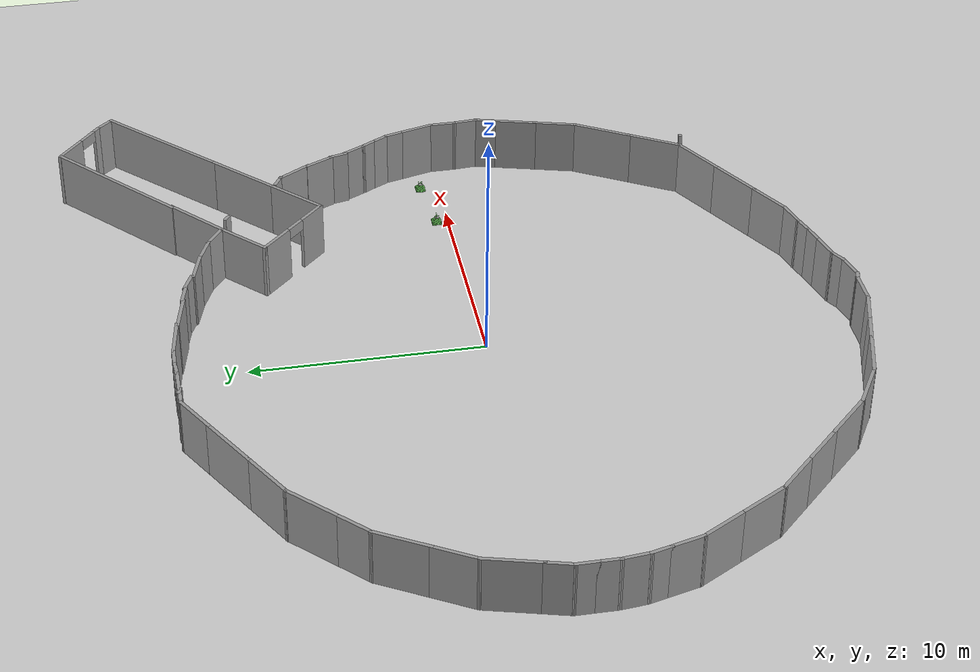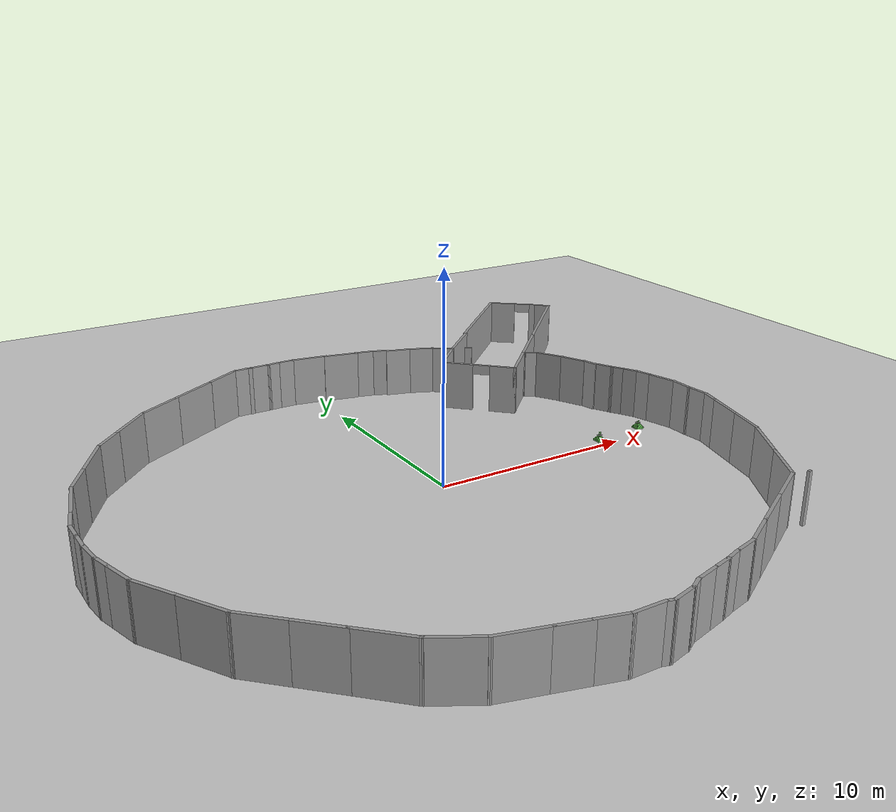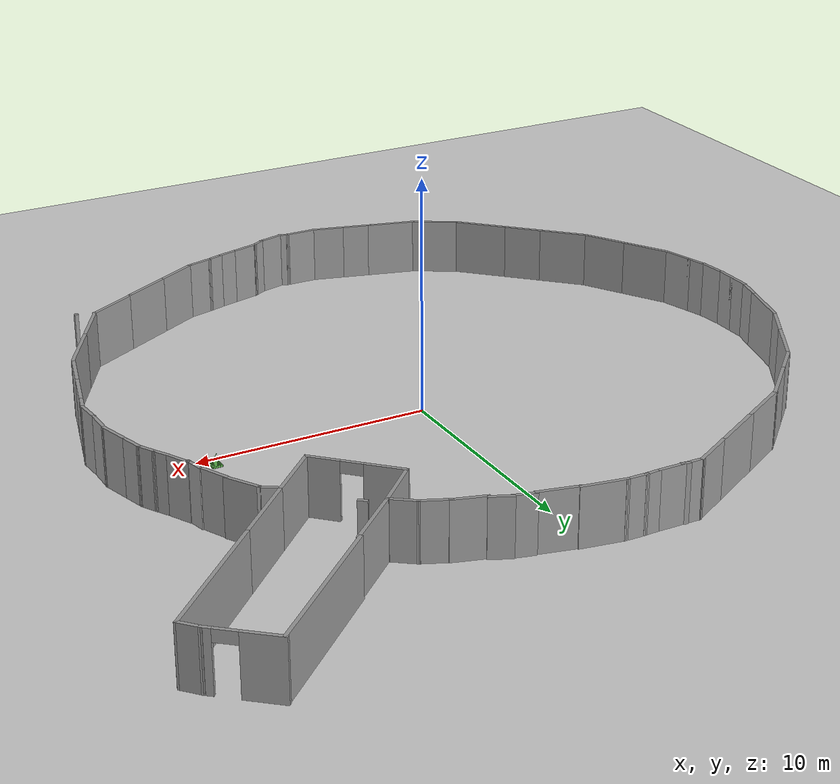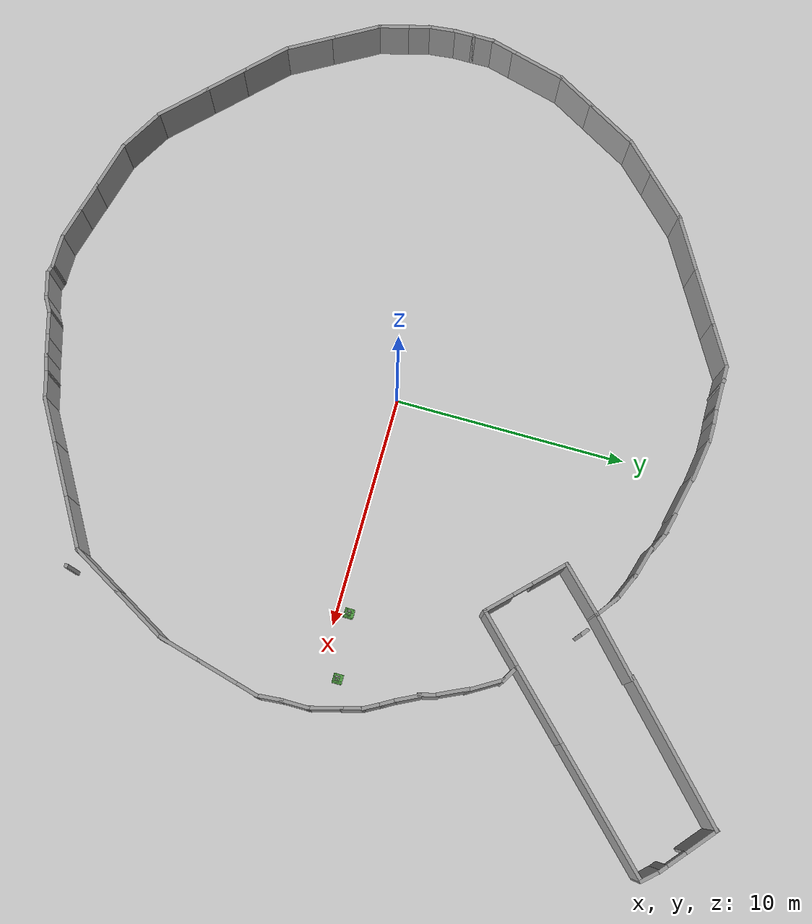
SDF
<sdf version="1.6">
 <world name="default">
  <model name="ground_plane">
   <static>1</static>
   <link name="link">
    <collision name="collision">
     <geometry><plane><normal>0 0 1</normal><size>100 100</size></plane></geometry>
     <surface><friction><ode><mu>100</mu><mu2>50</mu2></ode></friction></surface>
    </collision>
    <visual name="visual">
     <cast_shadows>0</cast_shadows>
     <geometry><plane><normal>0 0 1</normal><size>100 100</size></plane></geometry>
     <material>
      <script><uri>file://media/materials/scripts/gazebo.material</uri><name>Gazebo/Grey</name></script>
     </material>
    </visual>
   </link>
  </model>
  <model name="CircularFence">
   <pose>0.1565 0.6213 -0.024158 0 -0 0</pose>
   <link name="Wall_108">
    <collision name="Wall_108_Collision">
     <geometry><box><size>0.16 0.15 2.5</size></box></geometry>
     <pose>0 0 1.25 0 -0 0</pose>
    </collision>
    <visual name="Wall_108_Visual">
     <pose>0 0 1.25 0 -0 0</pose>
     <geometry><box><size>0.16 0.15 2.5</size></box></geometry>
     <material>
      <script><uri>file://media/materials/scripts/gazebo.material</uri><name>Gazebo/Grey</name></script>
      <ambient>0 0 0 0</ambient>
     </material>
    </visual>
    <pose>10.6487 -11.5681 0 0 -0 0</pose>
   </link>
   <link name="Wall_118">
    <collision name="Wall_118_Collision">
     <geometry><box><size>1.94177 0.15 2.5</size></box></geometry>
     <pose>0 0 1.25 0 -0 0</pose>
    </collision>
    <visual name="Wall_118_Visual">
     <pose>0 0 1.25 0 -0 0</pose>
     <geometry><box><size>1.94177 0.15 2.5</size></box></geometry>
     <material>
      <script><uri>file://media/materials/scripts/gazebo.material</uri><name>Gazebo/Grey</name></script>
      <ambient>1 1 1 1</ambient>
     </material>
    </visual>
    <pose>-0.537149 12.2558 0 0 -0 2.98255</pose>
   </link>
   <link name="Wall_120">
    <collision name="Wall_120_Collision">
     <geometry><box><size>1.83123 0.15 2.5</size></box></geometry>
     <pose>0 0 1.25 0 -0 0</pose>
    </collision>
    <visual name="Wall_120_Visual">
     <pose>0 0 1.25 0 -0 0</pose>
     <geometry><box><size>1.83123 0.15 2.5</size></box></geometry>
     <material>
      <script><uri>file://media/materials/scripts/gazebo.material</uri><name>Gazebo/Grey</name></script>
      <ambient>1 1 1 1</ambient>
     </material>
    </visual>
    <pose>1.13156 11.8951 0 0 -0 2.92292</pose>
   </link>
   <link name="Wall_123">
    <collision name="Wall_123_Collision">
     <geometry><box><size>1.25 0.15 2.5</size></box></geometry>
     <pose>0 0 1.25 0 -0 0</pose>
    </collision>
    <visual name="Wall_123_Visual">
     <pose>0 0 1.25 0 -0 0</pose>
     <geometry><box><size>1.25 0.15 2.5</size></box></geometry>
     <material>
      <script><uri>file://media/materials/scripts/gazebo.material</uri><name>Gazebo/Grey</name></script>
      <ambient>1 1 1 1</ambient>
     </material>
    </visual>
    <pose>13.4677 -1.09217 0 0 -0 1.5708</pose>
   </link>
   <link name="Wall_126">
    <collision name="Wall_126_Collision">
     <geometry><box><size>1.5 0.15 2.5</size></box></geometry>
     <pose>0 0 1.25 0 -0 0</pose>
    </collision>
    <visual name="Wall_126_Visual">
     <pose>0 0 1.25 0 -0 0</pose>
     <geometry><box><size>1.5 0.15 2.5</size></box></geometry>
     <material>
      <script><uri>file://media/materials/scripts/gazebo.material</uri><name>Gazebo/Grey</name></script>
      <ambient>1 1 1 1</ambient>
     </material>
    </visual>
    <pose>13.293 0.109828 0 0 -0 1.8326</pose>
   </link>
   <link name="Wall_127">
    <collision name="Wall_127_Collision">
     <geometry><box><size>1 0.15 2.5</size></box></geometry>
     <pose>0 0 1.25 0 -0 0</pose>
    </collision>
    <visual name="Wall_127_Visual">
     <pose>0 0 1.25 0 -0 0</pose>
     <geometry><box><size>1 0.15 2.5</size></box></geometry>
     <material>
      <script><uri>file://media/materials/scripts/gazebo.material</uri><name>Gazebo/Grey</name></script>
      <ambient>1 1 1 1</ambient>
     </material>
    </visual>
    <pose>13.0083 1.17235 0 0 -0 1.8326</pose>
   </link>
   <link name="Wall_128">
    <collision name="Wall_128_Collision">
     <geometry><box><size>0.888528 0.15 2.5</size></box></geometry>
     <pose>0 0 1.25 0 -0 0</pose>
    </collision>
    <visual name="Wall_128_Visual">
     <pose>0 0 1.25 0 -0 0</pose>
     <geometry><box><size>0.888528 0.15 2.5</size></box></geometry>
     <material>
      <script><uri>file://media/materials/scripts/gazebo.material</uri><name>Gazebo/Grey</name></script>
      <ambient>1 1 1 1</ambient>
     </material>
    </visual>
    <pose>12.7215 1.90706 0 0 -0 2.07005</pose>
   </link>
   <link name="Wall_129">
    <collision name="Wall_129_Collision">
     <geometry><box><size>0.75 0.15 2.5</size></box></geometry>
     <pose>0 0 1.25 0 -0 0</pose>
    </collision>
    <visual name="Wall_129_Visual">
     <pose>0 0 1.25 0 -0 0</pose>
     <geometry><box><size>0.75 0.15 2.5</size></box></geometry>
     <material>
      <script><uri>file://media/materials/scripts/gazebo.material</uri><name>Gazebo/Grey</name></script>
      <ambient>1 1 1 1</ambient>
     </material>
    </visual>
    <pose>12.3947 2.49105 0 0 -0 2.0944</pose>
   </link>
   <link name="Wall_130">
    <collision name="Wall_130_Collision">
     <geometry><box><size>1.12578 0.15 2.5</size></box></geometry>
     <pose>0 0 1.25 0 -0 0</pose>
    </collision>
    <visual name="Wall_130_Visual">
     <pose>0 0 1.25 0 -0 0</pose>
     <geometry><box><size>1.12578 0.15 2.5</size></box></geometry>
     <material>
      <script><uri>file://media/materials/scripts/gazebo.material</uri><name>Gazebo/Grey</name></script>
      <ambient>1 1 1 1</ambient>
     </material>
    </visual>
    <pose>12.026 3.18702 0 0 -0 2.03549</pose>
   </link>
   <link name="Wall_131">
    <collision name="Wall_131_Collision">
     <geometry><box><size>0.879 0.15 2.5</size></box></geometry>
     <pose>0 0 1.25 0 -0 0</pose>
    </collision>
    <visual name="Wall_131_Visual">
     <pose>0 0 1.25 0 -0 0</pose>
     <geometry><box><size>0.879 0.15 2.5</size></box></geometry>
     <material>
      <script><uri>file://media/materials/scripts/gazebo.material</uri><name>Gazebo/Grey</name></script>
      <ambient>1 1 1 1</ambient>
     </material>
    </visual>
    <pose>11.6892 3.94192 0 0 -0 1.79684</pose>
   </link>
   <link name="Wall_132">
    <collision name="Wall_132_Collision">
     <geometry><box><size>1.36585 0.15 2.5</size></box></geometry>
     <pose>0 0 1.25 0 -0 0</pose>
    </collision>
    <visual name="Wall_132_Visual">
     <pose>0 0 1.25 0 -0 0</pose>
     <geometry><box><size>1.36585 0.15 2.5</size></box></geometry>
     <material>
      <script><uri>file://media/materials/scripts/gazebo.material</uri><name>Gazebo/Grey</name></script>
      <ambient>1 1 1 1</ambient>
     </material>
    </visual>
    <pose>11.3126 4.84739 0 0 -0 2.00995</pose>
   </link>
   <link name="Wall_133">
    <collision name="Wall_133_Collision">
     <geometry><box><size>1.64734 0.15 2.5</size></box></geometry>
     <pose>0 0 1.25 0 -0 0</pose>
    </collision>
    <visual name="Wall_133_Visual">
     <pose>0 0 1.25 0 -0 0</pose>
     <geometry><box><size>1.64734 0.15 2.5</size></box></geometry>
     <material>
      <script><uri>file://media/materials/scripts/gazebo.material</uri><name>Gazebo/Grey</name></script>
      <ambient>1 1 1 1</ambient>
     </material>
    </visual>
    <pose>10.7045 6.03905 0 0 -0 2.11267</pose>
   </link>
   <link name="Wall_134">
    <collision name="Wall_134_Collision">
     <geometry><box><size>0.75 0.15 2.5</size></box></geometry>
     <pose>0 0 1.25 0 -0 0</pose>
    </collision>
    <visual name="Wall_134_Visual">
     <pose>0 0 1.25 0 -0 0</pose>
     <geometry><box><size>0.75 0.15 2.5</size></box></geometry>
     <material>
      <script><uri>file://media/materials/scripts/gazebo.material</uri><name>Gazebo/Grey</name></script>
      <ambient>1 1 1 1</ambient>
     </material>
    </visual>
    <pose>10.095 6.83046 0 0 -0 2.61799</pose>
   </link>
   <link name="Wall_138">
    <collision name="Wall_138_Collision">
     <geometry><box><size>1.24911 0.15 2.5</size></box></geometry>
     <pose>0 0 1.25 0 -0 0</pose>
    </collision>
    <visual name="Wall_138_Visual">
     <pose>0 0 1.25 0 -0 0</pose>
     <geometry><box><size>1.24911 0.15 2.5</size></box></geometry>
     <material>
      <script><uri>file://media/materials/scripts/gazebo.material</uri><name>Gazebo/Grey</name></script>
      <ambient>1 1 1 1</ambient>
     </material>
    </visual>
    <pose>6.34771 9.97388 0 0 -0 2.4965</pose>
   </link>
   <link name="Wall_139">
    <collision name="Wall_139_Collision">
     <geometry><box><size>1.31498 0.15 2.5</size></box></geometry>
     <pose>0 0 1.25 0 -0 0</pose>
    </collision>
    <visual name="Wall_139_Visual">
     <pose>0 0 1.25 0 -0 0</pose>
     <geometry><box><size>1.31498 0.15 2.5</size></box></geometry>
     <material>
      <script><uri>file://media/materials/scripts/gazebo.material</uri><name>Gazebo/Grey</name></script>
      <ambient>1 1 1 1</ambient>
     </material>
    </visual>
    <pose>5.37423 10.5362 0 0 -0 2.7322</pose>
   </link>
   <link name="Wall_140">
    <collision name="Wall_140_Collision">
     <geometry><box><size>1.49782 0.15 2.5</size></box></geometry>
     <pose>0 0 1.25 0 -0 0</pose>
    </collision>
    <visual name="Wall_140_Visual">
     <pose>0 0 1.25 0 -0 0</pose>
     <geometry><box><size>1.49782 0.15 2.5</size></box></geometry>
     <material>
      <script><uri>file://media/materials/scripts/gazebo.material</uri><name>Gazebo/Grey</name></script>
      <ambient>1 1 1 1</ambient>
     </material>
    </visual>
    <pose>4.22956 10.9573 0 0 -0 2.85692</pose>
   </link>
   <link name="Wall_141">
    <collision name="Wall_141_Collision">
     <geometry><box><size>1.00545 0.15 2.5</size></box></geometry>
     <pose>0 0 1.25 0 -0 0</pose>
    </collision>
    <visual name="Wall_141_Visual">
     <pose>0 0 1.25 0 -0 0</pose>
     <geometry><box><size>1.00545 0.15 2.5</size></box></geometry>
     <material>
      <script><uri>file://media/materials/scripts/gazebo.material</uri><name>Gazebo/Grey</name></script>
      <ambient>1 1 1 1</ambient>
     </material>
    </visual>
    <pose>3.19415 11.3982 0 0 -0 2.71064</pose>
   </link>
   <link name="Wall_142">
    <collision name="Wall_142_Collision">
     <geometry><box><size>0.993176 0.15 2.5</size></box></geometry>
     <pose>0 0 1.25 0 -0 0</pose>
    </collision>
    <visual name="Wall_142_Visual">
     <pose>0 0 1.25 0 -0 0</pose>
     <geometry><box><size>0.993176 0.15 2.5</size></box></geometry>
     <material>
      <script><uri>file://media/materials/scripts/gazebo.material</uri><name>Gazebo/Grey</name></script>
      <ambient>1 1 1 1</ambient>
     </material>
    </visual>
    <pose>2.39708 11.6448 0 0 -0 2.89134</pose>
   </link>
   <link name="Wall_144">
    <collision name="Wall_144_Collision">
     <geometry><box><size>0.5 0.15 2.5</size></box></geometry>
     <pose>0 0 1.25 0 -0 0</pose>
    </collision>
    <visual name="Wall_144_Visual">
     <pose>0 0 1.25 0 -0 0</pose>
     <geometry><box><size>0.5 0.15 2.5</size></box></geometry>
     <material>
      <script><uri>file://media/materials/scripts/gazebo.material</uri><name>Gazebo/Grey</name></script>
      <ambient>1 1 1 1</ambient>
     </material>
    </visual>
    <pose>-1.16759 -16.1719 0 0 0 -0.261799</pose>
   </link>
   <link name="Wall_145">
    <collision name="Wall_145_Collision">
     <geometry><box><size>1.25 0.15 2.5</size></box></geometry>
     <pose>0 0 1.25 0 -0 0</pose>
    </collision>
    <visual name="Wall_145_Visual">
     <pose>0 0 1.25 0 -0 0</pose>
     <geometry><box><size>1.25 0.15 2.5</size></box></geometry>
     <material>
      <script><uri>file://media/materials/scripts/gazebo.material</uri><name>Gazebo/Grey</name></script>
      <ambient>1 1 1 1</ambient>
     </material>
    </visual>
    <pose>-0.467294 -16.0748 0 0 -0 0.261799</pose>
   </link>
   <link name="Wall_146">
    <collision name="Wall_146_Collision">
     <geometry><box><size>0.75 0.15 2.5</size></box></geometry>
     <pose>0 0 1.25 0 -0 0</pose>
    </collision>
    <visual name="Wall_146_Visual">
     <pose>0 0 1.25 0 -0 0</pose>
     <geometry><box><size>0.75 0.15 2.5</size></box></geometry>
     <material>
      <script><uri>file://media/materials/scripts/gazebo.material</uri><name>Gazebo/Grey</name></script>
      <ambient>1 1 1 1</ambient>
     </material>
    </visual>
    <pose>0.323772 -15.7825 0 0 -0 0.523599</pose>
   </link>
   <link name="Wall_147">
    <collision name="Wall_147_Collision">
     <geometry><box><size>1.25 0.15 2.5</size></box></geometry>
     <pose>0 0 1.25 0 -0 0</pose>
    </collision>
    <visual name="Wall_147_Visual">
     <pose>0 0 1.25 0 -0 0</pose>
     <geometry><box><size>1.25 0.15 2.5</size></box></geometry>
     <material>
      <script><uri>file://media/materials/scripts/gazebo.material</uri><name>Gazebo/Grey</name></script>
      <ambient>1 1 1 1</ambient>
     </material>
    </visual>
    <pose>1.11484 -15.4901 0 0 -0 0.261799</pose>
   </link>
   <link name="Wall_148">
    <collision name="Wall_148_Collision">
     <geometry><box><size>1 0.15 2.5</size></box></geometry>
     <pose>0 0 1.25 0 -0 0</pose>
    </collision>
    <visual name="Wall_148_Visual">
     <pose>0 0 1.25 0 -0 0</pose>
     <geometry><box><size>1 0.15 2.5</size></box></geometry>
     <material>
      <script><uri>file://media/materials/scripts/gazebo.material</uri><name>Gazebo/Grey</name></script>
      <ambient>1 1 1 1</ambient>
     </material>
    </visual>
    <pose>2.05662 -15.2378 0 0 -0 0.261799</pose>
   </link>
   <link name="Wall_166">
    <collision name="Wall_166_Collision">
     <geometry><box><size>1.16803 0.15 2.5</size></box></geometry>
     <pose>0 0 1.25 0 -0 0</pose>
    </collision>
    <visual name="Wall_166_Visual">
     <pose>0 0 1.25 0 -0 0</pose>
     <geometry><box><size>1.16803 0.15 2.5</size></box></geometry>
     <material>
      <script><uri>file://media/materials/scripts/gazebo.material</uri><name>Gazebo/Grey</name></script>
      <ambient>1 1 1 1</ambient>
     </material>
    </visual>
    <pose>13.5088 -2.14952 0 0 -0 1.6517</pose>
   </link>
   <link name="Wall_168">
    <collision name="Wall_168_Collision">
     <geometry><box><size>0.970327 0.15 2.5</size></box></geometry>
     <pose>0 0 1.25 0 -0 0</pose>
    </collision>
    <visual name="Wall_168_Visual">
     <pose>0 0 1.25 0 -0 0</pose>
     <geometry><box><size>0.970327 0.15 2.5</size></box></geometry>
     <material>
      <script><uri>file://media/materials/scripts/gazebo.material</uri><name>Gazebo/Grey</name></script>
      <ambient>1 1 1 1</ambient>
     </material>
    </visual>
    <pose>-1.83187 12.4017 0 0 0 -0.009748</pose>
   </link>
   <link name="Wall_170">
    <collision name="Wall_170_Collision">
     <geometry><box><size>1 0.15 2.5</size></box></geometry>
     <pose>0 0 1.25 0 -0 0</pose>
    </collision>
    <visual name="Wall_170_Visual">
     <pose>0 0 1.25 0 -0 0</pose>
     <geometry><box><size>1 0.15 2.5</size></box></geometry>
     <material>
      <script><uri>file://media/materials/scripts/gazebo.material</uri><name>Gazebo/Grey</name></script>
      <ambient>1 1 1 1</ambient>
     </material>
    </visual>
    <pose>-16.3823 -1.21717 0 0 -0 1.5708</pose>
   </link>
   <link name="Wall_172">
    <collision name="Wall_172_Collision">
     <geometry><box><size>1 0.15 2.5</size></box></geometry>
     <pose>0 0 1.25 0 -0 0</pose>
    </collision>
    <visual name="Wall_172_Visual">
     <pose>0 0 1.25 0 -0 0</pose>
     <geometry><box><size>1 0.15 2.5</size></box></geometry>
     <material>
      <script><uri>file://media/materials/scripts/gazebo.material</uri><name>Gazebo/Grey</name></script>
      <ambient>1 1 1 1</ambient>
     </material>
    </visual>
    <pose>-16.3823 -2.06717 0 0 0 -1.5708</pose>
   </link>
   <link name="Wall_174">
    <collision name="Wall_174_Collision">
     <geometry><box><size>1.5 0.15 2.5</size></box></geometry>
     <pose>0 0 1.25 0 -0 0</pose>
    </collision>
    <visual name="Wall_174_Visual">
     <pose>0 0 1.25 0 -0 0</pose>
     <geometry><box><size>1.5 0.15 2.5</size></box></geometry>
     <material>
      <script><uri>file://media/materials/scripts/gazebo.material</uri><name>Gazebo/Grey</name></script>
      <ambient>1 1 1 1</ambient>
     </material>
    </visual>
    <pose>-2.01163 -16.1266 0 0 -0 3.14159</pose>
   </link>
   <link name="Wall_175">
    <collision name="Wall_175_Collision">
     <geometry><box><size>1.5 0.15 2.5</size></box></geometry>
     <pose>0 0 1.25 0 -0 0</pose>
    </collision>
    <visual name="Wall_175_Visual">
     <pose>0 0 1.25 0 -0 0</pose>
     <geometry><box><size>1.5 0.15 2.5</size></box></geometry>
     <material>
      <script><uri>file://media/materials/scripts/gazebo.material</uri><name>Gazebo/Grey</name></script>
      <ambient>1 1 1 1</ambient>
     </material>
    </visual>
    <pose>-3.33863 -15.9519 0 0 -0 2.87979</pose>
   </link>
   <link name="Wall_176">
    <collision name="Wall_176_Collision">
     <geometry><box><size>1.5 0.15 2.5</size></box></geometry>
     <pose>0 0 1.25 0 -0 0</pose>
    </collision>
    <visual name="Wall_176_Visual">
     <pose>0 0 1.25 0 -0 0</pose>
     <geometry><box><size>1.5 0.15 2.5</size></box></geometry>
     <material>
      <script><uri>file://media/materials/scripts/gazebo.material</uri><name>Gazebo/Grey</name></script>
      <ambient>1 1 1 1</ambient>
     </material>
    </visual>
    <pose>-4.64263 -15.6025 0 0 -0 2.87979</pose>
   </link>
   <link name="Wall_177">
    <collision name="Wall_177_Collision">
     <geometry><box><size>2.25 0.15 2.5</size></box></geometry>
     <pose>0 0 1.25 0 -0 0</pose>
    </collision>
    <visual name="Wall_177_Visual">
     <pose>0 0 1.25 0 -0 0</pose>
     <geometry><box><size>2.25 0.15 2.5</size></box></geometry>
     <material>
      <script><uri>file://media/materials/scripts/gazebo.material</uri><name>Gazebo/Grey</name></script>
      <ambient>1 1 1 1</ambient>
     </material>
    </visual>
    <pose>-6.30885 -15.156 0 0 -0 2.87979</pose>
   </link>
   <link name="Wall_178">
    <collision name="Wall_178_Collision">
     <geometry><box><size>2.25 0.15 2.5</size></box></geometry>
     <pose>0 0 1.25 0 -0 0</pose>
    </collision>
    <visual name="Wall_178_Visual">
     <pose>0 0 1.25 0 -0 0</pose>
     <geometry><box><size>2.25 0.15 2.5</size></box></geometry>
     <material>
      <script><uri>file://media/materials/scripts/gazebo.material</uri><name>Gazebo/Grey</name></script>
      <ambient>1 1 1 1</ambient>
     </material>
    </visual>
    <pose>-8.2324 -14.3592 0 0 -0 2.61799</pose>
   </link>
   <link name="Wall_179">
    <collision name="Wall_179_Collision">
     <geometry><box><size>2.5 0.15 2.5</size></box></geometry>
     <pose>0 0 1.25 0 -0 0</pose>
    </collision>
    <visual name="Wall_179_Visual">
     <pose>0 0 1.25 0 -0 0</pose>
     <geometry><box><size>2.5 0.15 2.5</size></box></geometry>
     <material>
      <script><uri>file://media/materials/scripts/gazebo.material</uri><name>Gazebo/Grey</name></script>
      <ambient>1 1 1 1</ambient>
     </material>
    </visual>
    <pose>-9.97258 -13.0034 0 0 -0 2.35619</pose>
   </link>
   <link name="Wall_180">
    <collision name="Wall_180_Collision">
     <geometry><box><size>2 0.15 2.5</size></box></geometry>
     <pose>0 0 1.25 0 -0 0</pose>
    </collision>
    <visual name="Wall_180_Visual">
     <pose>0 0 1.25 0 -0 0</pose>
     <geometry><box><size>2 0.15 2.5</size></box></geometry>
     <material>
      <script><uri>file://media/materials/scripts/gazebo.material</uri><name>Gazebo/Grey</name></script>
      <ambient>1 1 1 1</ambient>
     </material>
    </visual>
    <pose>-11.4575 -11.5185 0 0 -0 2.35619</pose>
   </link>
   <link name="Wall_181">
    <collision name="Wall_181_Collision">
     <geometry><box><size>2.25 0.15 2.5</size></box></geometry>
     <pose>0 0 1.25 0 -0 0</pose>
    </collision>
    <visual name="Wall_181_Visual">
     <pose>0 0 1.25 0 -0 0</pose>
     <geometry><box><size>2.25 0.15 2.5</size></box></geometry>
     <material>
      <script><uri>file://media/materials/scripts/gazebo.material</uri><name>Gazebo/Grey</name></script>
      <ambient>1 1 1 1</ambient>
     </material>
    </visual>
    <pose>-12.854 -10.1219 0 0 -0 2.35619</pose>
   </link>
   <link name="Wall_182">
    <collision name="Wall_182_Collision">
     <geometry><box><size>2.25 0.15 2.5</size></box></geometry>
     <pose>0 0 1.25 0 -0 0</pose>
    </collision>
    <visual name="Wall_182_Visual">
     <pose>0 0 1.25 0 -0 0</pose>
     <geometry><box><size>2.25 0.15 2.5</size></box></geometry>
     <material>
      <script><uri>file://media/materials/scripts/gazebo.material</uri><name>Gazebo/Grey</name></script>
      <ambient>1 1 1 1</ambient>
     </material>
    </visual>
    <pose>-14.1215 -8.47014 0 0 -0 2.0944</pose>
   </link>
   <link name="Wall_183">
    <collision name="Wall_183_Collision">
     <geometry><box><size>2.25 0.15 2.5</size></box></geometry>
     <pose>0 0 1.25 0 -0 0</pose>
    </collision>
    <visual name="Wall_183_Visual">
     <pose>0 0 1.25 0 -0 0</pose>
     <geometry><box><size>2.25 0.15 2.5</size></box></geometry>
     <material>
      <script><uri>file://media/materials/scripts/gazebo.material</uri><name>Gazebo/Grey</name></script>
      <ambient>1 1 1 1</ambient>
     </material>
    </visual>
    <pose>-15.1715 -6.65149 0 0 -0 2.0944</pose>
   </link>
   <link name="Wall_184">
    <collision name="Wall_184_Collision">
     <geometry><box><size>1.5 0.15 2.5</size></box></geometry>
     <pose>0 0 1.25 0 -0 0</pose>
    </collision>
    <visual name="Wall_184_Visual">
     <pose>0 0 1.25 0 -0 0</pose>
     <geometry><box><size>1.5 0.15 2.5</size></box></geometry>
     <material>
      <script><uri>file://media/materials/scripts/gazebo.material</uri><name>Gazebo/Grey</name></script>
      <ambient>1 1 1 1</ambient>
     </material>
    </visual>
    <pose>-15.8712 -5.09016 0 0 -0 1.8326</pose>
   </link>
   <link name="Wall_185">
    <collision name="Wall_185_Collision">
     <geometry><box><size>1 0.15 2.5</size></box></geometry>
     <pose>0 0 1.25 0 -0 0</pose>
    </collision>
    <visual name="Wall_185_Visual">
     <pose>0 0 1.25 0 -0 0</pose>
     <geometry><box><size>1 0.15 2.5</size></box></geometry>
     <material>
      <script><uri>file://media/materials/scripts/gazebo.material</uri><name>Gazebo/Grey</name></script>
      <ambient>1 1 1 1</ambient>
     </material>
    </visual>
    <pose>-16.1559 -4.02765 0 0 -0 1.8326</pose>
   </link>
   <link name="Wall_186">
    <collision name="Wall_186_Collision">
     <geometry><box><size>1.28097 0.15 2.5</size></box></geometry>
     <pose>0 0 1.25 0 -0 0</pose>
    </collision>
    <visual name="Wall_186_Visual">
     <pose>0 0 1.25 0 -0 0</pose>
     <geometry><box><size>1.28097 0.15 2.5</size></box></geometry>
     <material>
      <script><uri>file://media/materials/scripts/gazebo.material</uri><name>Gazebo/Grey</name></script>
      <ambient>1 1 1 1</ambient>
     </material>
    </visual>
    <pose>-16.3241 -3.05465 0 0 -0 1.67393</pose>
   </link>
   <link name="Wall_190">
    <collision name="Wall_190_Collision">
     <geometry><box><size>0.415491 0.15 2.5</size></box></geometry>
     <pose>0 0 1.25 0 -0 0</pose>
    </collision>
    <visual name="Wall_190_Visual">
     <pose>0 0 1.25 0 -0 0</pose>
     <geometry><box><size>0.415491 0.15 2.5</size></box></geometry>
     <material>
      <script><uri>file://media/materials/scripts/gazebo.material</uri><name>Gazebo/Grey</name></script>
      <ambient>0 0 0 0</ambient>
     </material>
    </visual>
    <pose>-3.96438 12.3692 0 0 0 -0.278323</pose>
   </link>
   <link name="Wall_200">
    <collision name="Wall_200_Collision">
     <geometry><box><size>1.25 0.15 2.5</size></box></geometry>
     <pose>0 0 1.25 0 -0 0</pose>
    </collision>
    <visual name="Wall_200_Visual">
     <pose>0 0 1.25 0 -0 0</pose>
     <geometry><box><size>1.25 0.15 2.5</size></box></geometry>
     <material>
      <script><uri>file://media/materials/scripts/gazebo.material</uri><name>Gazebo/Grey</name></script>
      <ambient>1 1 1 1</ambient>
     </material>
    </visual>
    <pose>-16.24 -0.260912 0 0 -0 1.309</pose>
   </link>
   <link name="Wall_201">
    <collision name="Wall_201_Collision">
     <geometry><box><size>2.5 0.15 2.5</size></box></geometry>
     <pose>0 0 1.25 0 -0 0</pose>
    </collision>
    <visual name="Wall_201_Visual">
     <pose>0 0 1.25 0 -0 0</pose>
     <geometry><box><size>2.5 0.15 2.5</size></box></geometry>
     <material>
      <script><uri>file://media/materials/scripts/gazebo.material</uri><name>Gazebo/Grey</name></script>
      <ambient>1 1 1 1</ambient>
     </material>
    </visual>
    <pose>-15.7935 1.40531 0 0 -0 1.309</pose>
   </link>
   <link name="Wall_202">
    <collision name="Wall_202_Collision">
     <geometry><box><size>2 0.15 2.5</size></box></geometry>
     <pose>0 0 1.25 0 -0 0</pose>
    </collision>
    <visual name="Wall_202_Visual">
     <pose>0 0 1.25 0 -0 0</pose>
     <geometry><box><size>2 0.15 2.5</size></box></geometry>
     <material>
      <script><uri>file://media/materials/scripts/gazebo.material</uri><name>Gazebo/Grey</name></script>
      <ambient>1 1 1 1</ambient>
     </material>
    </visual>
    <pose>-15.0269 3.34135 0 0 -0 1.0472</pose>
   </link>
   <link name="Wall_203">
    <collision name="Wall_203_Collision">
     <geometry><box><size>2.5 0.15 2.5</size></box></geometry>
     <pose>0 0 1.25 0 -0 0</pose>
    </collision>
    <visual name="Wall_203_Visual">
     <pose>0 0 1.25 0 -0 0</pose>
     <geometry><box><size>2.5 0.15 2.5</size></box></geometry>
     <material>
      <script><uri>file://media/materials/scripts/gazebo.material</uri><name>Gazebo/Grey</name></script>
      <ambient>1 1 1 1</ambient>
     </material>
    </visual>
    <pose>-13.9769 5.16 0 0 -0 1.0472</pose>
   </link>
   <link name="Wall_204">
    <collision name="Wall_204_Collision">
     <geometry><box><size>1.75 0.15 2.5</size></box></geometry>
     <pose>0 0 1.25 0 -0 0</pose>
    </collision>
    <visual name="Wall_204_Visual">
     <pose>0 0 1.25 0 -0 0</pose>
     <geometry><box><size>1.75 0.15 2.5</size></box></geometry>
     <material>
      <script><uri>file://media/materials/scripts/gazebo.material</uri><name>Gazebo/Grey</name></script>
      <ambient>1 1 1 1</ambient>
     </material>
    </visual>
    <pose>-12.8237 6.74327 0 0 -0 0.785398</pose>
   </link>
   <link name="Wall_205">
    <collision name="Wall_205_Collision">
     <geometry><box><size>2.5 0.15 2.5</size></box></geometry>
     <pose>0 0 1.25 0 -0 0</pose>
    </collision>
    <visual name="Wall_205_Visual">
     <pose>0 0 1.25 0 -0 0</pose>
     <geometry><box><size>2.5 0.15 2.5</size></box></geometry>
     <material>
      <script><uri>file://media/materials/scripts/gazebo.material</uri><name>Gazebo/Grey</name></script>
      <ambient>1 1 1 1</ambient>
     </material>
    </visual>
    <pose>-11.4272 8.1398 0 0 -0 0.785398</pose>
   </link>
   <link name="Wall_206">
    <collision name="Wall_206_Collision">
     <geometry><box><size>2.5 0.15 2.5</size></box></geometry>
     <pose>0 0 1.25 0 -0 0</pose>
    </collision>
    <visual name="Wall_206_Visual">
     <pose>0 0 1.25 0 -0 0</pose>
     <geometry><box><size>2.5 0.15 2.5</size></box></geometry>
     <material>
      <script><uri>file://media/materials/scripts/gazebo.material</uri><name>Gazebo/Grey</name></script>
      <ambient>1 1 1 1</ambient>
     </material>
    </visual>
    <pose>-9.57876 9.55815 0 0 -0 0.523599</pose>
   </link>
   <link name="Wall_207">
    <collision name="Wall_207_Collision">
     <geometry><box><size>2.75 0.15 2.5</size></box></geometry>
     <pose>0 0 1.25 0 -0 0</pose>
    </collision>
    <visual name="Wall_207_Visual">
     <pose>0 0 1.25 0 -0 0</pose>
     <geometry><box><size>2.75 0.15 2.5</size></box></geometry>
     <material>
      <script><uri>file://media/materials/scripts/gazebo.material</uri><name>Gazebo/Grey</name></script>
      <ambient>1 1 1 1</ambient>
     </material>
    </visual>
    <pose>-7.43534 10.7957 0 0 -0 0.523599</pose>
   </link>
   <link name="Wall_208">
    <collision name="Wall_208_Collision">
     <geometry><box><size>2 0.15 2.5</size></box></geometry>
     <pose>0 0 1.25 0 -0 0</pose>
    </collision>
    <visual name="Wall_208_Visual">
     <pose>0 0 1.25 0 -0 0</pose>
     <geometry><box><size>2 0.15 2.5</size></box></geometry>
     <material>
      <script><uri>file://media/materials/scripts/gazebo.material</uri><name>Gazebo/Grey</name></script>
      <ambient>1 1 1 1</ambient>
     </material>
    </visual>
    <pose>-5.50844 11.9081 0 0 -0 0.523599</pose>
   </link>
   <link name="Wall_209">
    <collision name="Wall_209_Collision">
     <geometry><box><size>2 0.15 2.5</size></box></geometry>
     <pose>0 0 1.25 0 -0 0</pose>
    </collision>
    <visual name="Wall_209_Visual">
     <pose>0 0 1.25 0 -0 0</pose>
     <geometry><box><size>2 0.15 2.5</size></box></geometry>
     <material>
      <script><uri>file://media/materials/scripts/gazebo.material</uri><name>Gazebo/Grey</name></script>
      <ambient>1 1 1 1</ambient>
     </material>
    </visual>
    <pose>-3.78236 12.3707 0 0 -0 0</pose>
   </link>
   <link name="Wall_210">
    <collision name="Wall_210_Collision">
     <geometry><box><size>0.766345 0.15 2.5</size></box></geometry>
     <pose>0 0 1.25 0 -0 0</pose>
    </collision>
    <visual name="Wall_210_Visual">
     <pose>0 0 1.25 0 -0 0</pose>
     <geometry><box><size>0.766345 0.15 2.5</size></box></geometry>
     <material>
      <script><uri>file://media/materials/scripts/gazebo.material</uri><name>Gazebo/Grey</name></script>
      <ambient>1 1 1 1</ambient>
     </material>
    </visual>
    <pose>-2.54969 12.3882 0 0 -0 0.056841</pose>
   </link>
   <link name="Wall_212">
    <collision name="Wall_212_Collision">
     <geometry><box><size>1 0.15 2.5</size></box></geometry>
     <pose>0 0 1.25 0 -0 0</pose>
    </collision>
    <visual name="Wall_212_Visual">
     <pose>0 0 1.25 0 -0 0</pose>
     <geometry><box><size>1 0.15 2.5</size></box></geometry>
     <material>
      <script><uri>file://media/materials/scripts/gazebo.material</uri><name>Gazebo/Grey</name></script>
      <ambient>1 1 1 1</ambient>
     </material>
    </visual>
    <pose>13.4399 -3.06739 0 0 0 -1.8326</pose>
   </link>
   <link name="Wall_213">
    <collision name="Wall_213_Collision">
     <geometry><box><size>2 0.15 2.5</size></box></geometry>
     <pose>0 0 1.25 0 -0 0</pose>
    </collision>
    <visual name="Wall_213_Visual">
     <pose>0 0 1.25 0 -0 0</pose>
     <geometry><box><size>2 0.15 2.5</size></box></geometry>
     <material>
      <script><uri>file://media/materials/scripts/gazebo.material</uri><name>Gazebo/Grey</name></script>
      <ambient>1 1 1 1</ambient>
     </material>
    </visual>
    <pose>13.0905 -4.37139 0 0 0 -1.8326</pose>
   </link>
   <link name="Wall_214">
    <collision name="Wall_214_Collision">
     <geometry><box><size>2 0.15 2.5</size></box></geometry>
     <pose>0 0 1.25 0 -0 0</pose>
    </collision>
    <visual name="Wall_214_Visual">
     <pose>0 0 1.25 0 -0 0</pose>
     <geometry><box><size>2 0.15 2.5</size></box></geometry>
     <material>
      <script><uri>file://media/materials/scripts/gazebo.material</uri><name>Gazebo/Grey</name></script>
      <ambient>1 1 1 1</ambient>
     </material>
    </visual>
    <pose>12.6117 -6.15835 0 0 0 -1.8326</pose>
   </link>
   <link name="Wall_215">
    <collision name="Wall_215_Collision">
     <geometry><box><size>2.75 0.15 2.5</size></box></geometry>
     <pose>0 0 1.25 0 -0 0</pose>
    </collision>
    <visual name="Wall_215_Visual">
     <pose>0 0 1.25 0 -0 0</pose>
     <geometry><box><size>2.75 0.15 2.5</size></box></geometry>
     <material>
      <script><uri>file://media/materials/scripts/gazebo.material</uri><name>Gazebo/Grey</name></script>
      <ambient>1 1 1 1</ambient>
     </material>
    </visual>
    <pose>11.7223 -8.17767 0 0 0 -2.0944</pose>
   </link>
   <link name="Wall_216">
    <collision name="Wall_216_Collision">
     <geometry><box><size>2.5 0.15 2.5</size></box></geometry>
     <pose>0 0 1.25 0 -0 0</pose>
    </collision>
    <visual name="Wall_216_Visual">
     <pose>0 0 1.25 0 -0 0</pose>
     <geometry><box><size>2.5 0.15 2.5</size></box></geometry>
     <material>
      <script><uri>file://media/materials/scripts/gazebo.material</uri><name>Gazebo/Grey</name></script>
      <ambient>1 1 1 1</ambient>
     </material>
    </visual>
    <pose>10.4848 -10.3211 0 0 0 -2.0944</pose>
   </link>
   <link name="Wall_217">
    <collision name="Wall_217_Collision">
     <geometry><box><size>2.5 0.15 2.5</size></box></geometry>
     <pose>0 0 1.25 0 -0 0</pose>
    </collision>
    <visual name="Wall_217_Visual">
     <pose>0 0 1.25 0 -0 0</pose>
     <geometry><box><size>2.5 0.15 2.5</size></box></geometry>
     <material>
      <script><uri>file://media/materials/scripts/gazebo.material</uri><name>Gazebo/Grey</name></script>
      <ambient>1 1 1 1</ambient>
     </material>
    </visual>
    <pose>8.87974 -11.9262 0 0 0 -2.61799</pose>
   </link>
   <link name="Wall_218">
    <collision name="Wall_218_Collision">
     <geometry><box><size>2.5 0.15 2.5</size></box></geometry>
     <pose>0 0 1.25 0 -0 0</pose>
    </collision>
    <visual name="Wall_218_Visual">
     <pose>0 0 1.25 0 -0 0</pose>
     <geometry><box><size>2.5 0.15 2.5</size></box></geometry>
     <material>
      <script><uri>file://media/materials/scripts/gazebo.material</uri><name>Gazebo/Grey</name></script>
      <ambient>1 1 1 1</ambient>
     </material>
    </visual>
    <pose>6.84458 -13.1012 0 0 0 -2.61799</pose>
   </link>
   <link name="Wall_219">
    <collision name="Wall_219_Collision">
     <geometry><box><size>2 0.15 2.5</size></box></geometry>
     <pose>0 0 1.25 0 -0 0</pose>
    </collision>
    <visual name="Wall_219_Visual">
     <pose>0 0 1.25 0 -0 0</pose>
     <geometry><box><size>2 0.15 2.5</size></box></geometry>
     <material>
      <script><uri>file://media/materials/scripts/gazebo.material</uri><name>Gazebo/Grey</name></script>
      <ambient>1 1 1 1</ambient>
     </material>
    </visual>
    <pose>5.02592 -14.1512 0 0 0 -2.61799</pose>
   </link>
   <link name="Wall_220">
    <collision name="Wall_220_Collision">
     <geometry><box><size>1.25 0.15 2.5</size></box></geometry>
     <pose>0 0 1.25 0 -0 0</pose>
    </collision>
    <visual name="Wall_220_Visual">
     <pose>0 0 1.25 0 -0 0</pose>
     <geometry><box><size>1.25 0.15 2.5</size></box></geometry>
     <material>
      <script><uri>file://media/materials/scripts/gazebo.material</uri><name>Gazebo/Grey</name></script>
      <ambient>1 1 1 1</ambient>
     </material>
    </visual>
    <pose>3.69359 -14.756 0 0 0 -2.87979</pose>
   </link>
   <link name="Wall_221">
    <collision name="Wall_221_Collision">
     <geometry><box><size>0.882068 0.15 2.5</size></box></geometry>
     <pose>0 0 1.25 0 -0 0</pose>
    </collision>
    <visual name="Wall_221_Visual">
     <pose>0 0 1.25 0 -0 0</pose>
     <geometry><box><size>0.882068 0.15 2.5</size></box></geometry>
     <material>
      <script><uri>file://media/materials/scripts/gazebo.material</uri><name>Gazebo/Grey</name></script>
      <ambient>1 1 1 1</ambient>
     </material>
    </visual>
    <pose>2.81473 -15.0131 0 0 0 -2.82286</pose>
   </link>
   <link name="Wall_224">
    <collision name="Wall_224_Collision">
     <geometry><box><size>2.5 0.15 2.5</size></box></geometry>
     <pose>0 0 1.25 0 -0 0</pose>
    </collision>
    <visual name="Wall_224_Visual">
     <pose>0 0 1.25 0 -0 0</pose>
     <geometry><box><size>2.5 0.15 2.5</size></box></geometry>
     <material>
      <script><uri>file://media/materials/scripts/gazebo.material</uri><name>Gazebo/Grey</name></script>
      <ambient>1 1 1 1</ambient>
     </material>
    </visual>
    <pose>5.95598 8.8126 0 0 0 -2.35619</pose>
   </link>
   <link name="Wall_225">
    <pose>6.48631 6.62057 0 0 0 -0.785398</pose>
    <visual name="Wall_225_Visual_0">
     <pose>-1.14631 0 1.25 0 -0 0</pose>
     <geometry><box><size>1.70738 0.15 2.5</size></box></geometry>
     <material>
      <script><uri>file://media/materials/scripts/gazebo.material</uri><name>Gazebo/Grey</name></script>
      <ambient>1 1 1 1</ambient>
     </material>
    </visual>
    <collision name="Wall_225_Collision_0">
     <geometry><box><size>1.70738 0.15 2.5</size></box></geometry>
     <pose>-1.14631 0 1.25 0 -0 0</pose>
    </collision>
    <visual name="Wall_225_Visual_1">
     <pose>1.30369 0 1.25 0 -0 0</pose>
     <geometry><box><size>1.39262 0.15 2.5</size></box></geometry>
     <material>
      <script><uri>file://media/materials/scripts/gazebo.material</uri><name>Gazebo/Grey</name></script>
      <ambient>1 1 1 1</ambient>
     </material>
    </visual>
    <collision name="Wall_225_Collision_1">
     <geometry><box><size>1.39262 0.15 2.5</size></box></geometry>
     <pose>1.30369 0 1.25 0 -0 0</pose>
    </collision>
    <visual name="Wall_225_Visual_2">
     <pose>0.157377 0 2.25 0 -0 0</pose>
     <geometry><box><size>0.9 0.15 0.5</size></box></geometry>
     <material>
      <script><uri>file://media/materials/scripts/gazebo.material</uri><name>Gazebo/Grey</name></script>
      <ambient>1 1 1 1</ambient>
     </material>
    </visual>
    <collision name="Wall_225_Collision_2">
     <geometry><box><size>0.9 0.15 0.5</size></box></geometry>
     <pose>0.157377 0 2.25 0 -0 0</pose>
    </collision>
   </link>
   <link name="Wall_226">
    <collision name="Wall_226_Collision">
     <geometry><box><size>2.75 0.15 2.5</size></box></geometry>
     <pose>0 0 1.25 0 -0 0</pose>
    </collision>
    <visual name="Wall_226_Visual">
     <pose>0 0 1.25 0 -0 0</pose>
     <geometry><box><size>2.75 0.15 2.5</size></box></geometry>
     <material>
      <script><uri>file://media/materials/scripts/gazebo.material</uri><name>Gazebo/Grey</name></script>
      <ambient>1 1 1 1</ambient>
     </material>
    </visual>
    <pose>8.76673 6.17863 0 0 -0 0.785398</pose>
   </link>
   <link name="Wall_228">
    <collision name="Wall_228_Collision">
     <geometry><box><size>0.387432 0.15 2.5</size></box></geometry>
     <pose>0 0 1.25 0 -0 0</pose>
    </collision>
    <visual name="Wall_228_Visual">
     <pose>0 0 1.25 0 -0 0</pose>
     <geometry><box><size>0.387432 0.15 2.5</size></box></geometry>
     <material>
      <script><uri>file://media/materials/scripts/gazebo.material</uri><name>Gazebo/Grey</name></script>
      <ambient>0 0 0 0</ambient>
     </material>
    </visual>
    <pose>7.59944 9.34213 0 0 -0 2.48023</pose>
   </link>
   <link name="Wall_230">
    <collision name="Wall_230_Collision">
     <geometry><box><size>3.04553 0.15 2.5</size></box></geometry>
     <pose>0 0 1.25 0 -0 0</pose>
    </collision>
    <visual name="Wall_230_Visual">
     <pose>0 0 1.25 0 -0 0</pose>
     <geometry><box><size>3.04553 0.15 2.5</size></box></geometry>
     <material>
      <script><uri>file://media/materials/scripts/gazebo.material</uri><name>Gazebo/Grey</name></script>
      <ambient>1 1 1 1</ambient>
     </material>
    </visual>
    <pose>7.84637 10.6301 0 0 0 -2.39183</pose>
   </link>
   <link name="Wall_233">
    <collision name="Wall_233_Collision">
     <geometry><box><size>3.5 0.15 2.5</size></box></geometry>
     <pose>0 0 1.25 0 -0 0</pose>
    </collision>
    <visual name="Wall_233_Visual">
     <pose>0 0 1.25 0 -0 0</pose>
     <geometry><box><size>3.5 0.15 2.5</size></box></geometry>
     <material>
      <script><uri>file://media/materials/scripts/gazebo.material</uri><name>Gazebo/Grey</name></script>
      <ambient>1 1 1 1</ambient>
     </material>
    </visual>
    <pose>10.8704 8.28227 0 0 -0 0.785398</pose>
   </link>
   <link name="Wall_235">
    <pose>14.764 15.305 0 0 -0 2.43116</pose>
    <visual name="Wall_235_Visual_0">
     <pose>-1.24215 0 1.25 0 -0 0</pose>
     <geometry><box><size>0.420278 0.15 2.5</size></box></geometry>
     <material>
      <script><uri>file://media/materials/scripts/gazebo.material</uri><name>Gazebo/Grey</name></script>
      <ambient>1 1 1 1</ambient>
     </material>
    </visual>
    <collision name="Wall_235_Collision_0">
     <geometry><box><size>0.420278 0.15 2.5</size></box></geometry>
     <pose>-1.24215 0 1.25 0 -0 0</pose>
    </collision>
    <visual name="Wall_235_Visual_1">
     <pose>0.660139 0 1.25 0 -0 0</pose>
     <geometry><box><size>1.5843 0.15 2.5</size></box></geometry>
     <material>
      <script><uri>file://media/materials/scripts/gazebo.material</uri><name>Gazebo/Grey</name></script>
      <ambient>1 1 1 1</ambient>
     </material>
    </visual>
    <collision name="Wall_235_Collision_1">
     <geometry><box><size>1.5843 0.15 2.5</size></box></geometry>
     <pose>0.660139 0 1.25 0 -0 0</pose>
    </collision>
    <visual name="Wall_235_Visual_2">
     <pose>-0.582012 0 2.25 0 -0 0</pose>
     <geometry><box><size>0.9 0.15 0.5</size></box></geometry>
     <material>
      <script><uri>file://media/materials/scripts/gazebo.material</uri><name>Gazebo/Grey</name></script>
      <ambient>1 1 1 1</ambient>
     </material>
    </visual>
    <collision name="Wall_235_Collision_2">
     <geometry><box><size>0.9 0.15 0.5</size></box></geometry>
     <pose>-0.582012 0 2.25 0 -0 0</pose>
    </collision>
   </link>
   <link name="Wall_236">
    <collision name="Wall_236_Collision">
     <geometry><box><size>6.82723 0.15 2.5</size></box></geometry>
     <pose>0 0 1.25 0 -0 0</pose>
    </collision>
    <visual name="Wall_236_Visual">
     <pose>0 0 1.25 0 -0 0</pose>
     <geometry><box><size>6.82723 0.15 2.5</size></box></geometry>
     <material>
      <script><uri>file://media/materials/scripts/gazebo.material</uri><name>Gazebo/Grey</name></script>
      <ambient>1 1 1 1</ambient>
     </material>
    </visual>
    <pose>11.2764 13.8917 0 0 0 -2.39187</pose>
   </link>
   <link name="Wall_238">
    <collision name="Wall_238_Collision">
     <geometry><box><size>6.25 0.15 2.5</size></box></geometry>
     <pose>0 0 1.25 0 -0 0</pose>
    </collision>
    <visual name="Wall_238_Visual">
     <pose>0 0 1.25 0 -0 0</pose>
     <geometry><box><size>6.25 0.15 2.5</size></box></geometry>
     <material>
      <script><uri>file://media/materials/scripts/gazebo.material</uri><name>Gazebo/Grey</name></script>
      <ambient>1 1 1 1</ambient>
     </material>
    </visual>
    <pose>14.2115 11.6234 0 0 -0 0.785398</pose>
   </link>
   <link name="Wall_239">
    <collision name="Wall_239_Collision">
     <geometry><box><size>0.990548 0.15 2.5</size></box></geometry>
     <pose>0 0 1.25 0 -0 0</pose>
    </collision>
    <visual name="Wall_239_Visual">
     <pose>0 0 1.25 0 -0 0</pose>
     <geometry><box><size>0.990548 0.15 2.5</size></box></geometry>
     <material>
      <script><uri>file://media/materials/scripts/gazebo.material</uri><name>Gazebo/Grey</name></script>
      <ambient>1 1 1 1</ambient>
     </material>
    </visual>
    <pose>16.0881 14.0934 0 0 -0 2.30002</pose>
   </link>
   <static>1</static>
  </model>
  <model name="plant_109">
   <link name="link_0">
    <inertial>
     <mass>1</mass>
     <inertia>
      <ixx>0.0134051</ixx>
      <ixy>0</ixy>
      <ixz>0</ixz>
      <iyy>0.0134051</iyy>
      <iyz>0</iyz>
      <izz>0.0254102</izz>
     </inertia>
    </inertial>
    <gravity>0</gravity>
    <visual name="visual">
     <geometry><mesh><uri>model://square_pot/pot.stl</uri><scale>0.033 0.033 0.02</scale></mesh></geometry>
     <material>
      <lighting>1</lighting>
      <script><uri>file://media/materials/scripts/gazebo.material</uri><name>Gazebo/Grass</name></script>
      <ambient>0.3 0.3 0.3 1</ambient>
      <diffuse>0.7 0.7 0.7 1</diffuse>
      <specular>0.01 0.01 0.01 1</specular>
      <emissive>0 0 0 1</emissive>
      <shader type="vertex"><normal_map>__default__</normal_map></shader>
     </material>
    </visual>
    <collision name="collision">
     <pose>0 0 0.25 0 -0 0</pose>
     <geometry><box><size>0.4 0.4 0.4</size></box></geometry>
     <surface>
      <friction>
       <ode><mu>1</mu><mu2>1</mu2><fdir1>0 0 0</fdir1><slip1>0</slip1><slip2>0</slip2></ode>
       <torsional>
        <coefficient>1</coefficient>
        <patch_radius>0</patch_radius>
        <surface_radius>0</surface_radius>
        <use_patch_radius>1</use_patch_radius>
        <ode><slip>0</slip></ode>
       </torsional>
      </friction>
      <bounce><restitution_coefficient>0</restitution_coefficient><threshold>1e+06</threshold></bounce>
      <contact>
       <collide_without_contact>1</collide_without_contact>
       <collide_without_contact_bitmask>1</collide_without_contact_bitmask>
       <collide_bitmask>1</collide_bitmask>
       <ode>
        <soft_cfm>0</soft_cfm>
        <soft_erp>0.2</soft_erp>
        <kp>1e+13</kp>
        <kd>1</kd>
        <max_vel>0.01</max_vel>
        <min_depth>0</min_depth>
       </ode>
       <bullet>
        <split_impulse>1</split_impulse>
        <split_impulse_penetration_threshold>-0.01</split_impulse_penetration_threshold>
        <soft_cfm>0</soft_cfm>
        <soft_erp>0.2</soft_erp>
        <kp>1e+13</kp>
        <kd>1</kd>
       </bullet>
      </contact>
     </surface>
    </collision>
   </link>
   <link name="link_0_0">
    <pose>-0.011441 -0.008338 0.308474 0 -0 0</pose>
    <inertial>
     <mass>0.000736153</mass>
     <inertia>
      <ixx>2.11165e-06</ixx>
      <ixy>0</ixy>
      <ixz>0</ixz>
      <iyy>2.64382e-06</iyy>
      <iyz>0</iyz>
      <izz>4.70976e-06</izz>
     </inertia>
    </inertial>
    <visual name="visual">
     <geometry><box><size>0.206678 0.18452 0.019291</size></box></geometry>
     <material>
      <lighting>1</lighting>
      <script><uri>file://media/materials/scripts/gazebo.material</uri><name>Gazebo/Grey</name></script>
      <ambient>0.3 0.3 0.3 1</ambient>
      <diffuse>0.7 0.7 0.7 1</diffuse>
      <specular>0.01 0.01 0.01 1</specular>
      <emissive>0 0 0 1</emissive>
     </material>
    </visual>
    <collision name="collision">
     <geometry><box><size>0.206678 0.18452 0.019291</size></box></geometry>
     <surface>
      <friction>
       <ode><mu>1</mu><mu2>1</mu2><fdir1>0 0 0</fdir1><slip1>0</slip1><slip2>0</slip2></ode>
       <torsional>
        <coefficient>1</coefficient>
        <patch_radius>0</patch_radius>
        <surface_radius>0</surface_radius>
        <use_patch_radius>1</use_patch_radius>
        <ode><slip>0</slip></ode>
       </torsional>
      </friction>
      <bounce><restitution_coefficient>0</restitution_coefficient><threshold>1e+06</threshold></bounce>
      <contact>
       <collide_without_contact>0</collide_without_contact>
       <collide_without_contact_bitmask>1</collide_without_contact_bitmask>
       <collide_bitmask>1</collide_bitmask>
       <ode>
        <soft_cfm>0</soft_cfm>
        <soft_erp>0.2</soft_erp>
        <kp>1e+13</kp>
        <kd>1</kd>
        <max_vel>0.01</max_vel>
        <min_depth>0</min_depth>
       </ode>
       <bullet>
        <split_impulse>1</split_impulse>
        <split_impulse_penetration_threshold>-0.01</split_impulse_penetration_threshold>
        <soft_cfm>0</soft_cfm>
        <soft_erp>0.2</soft_erp>
        <kp>1e+13</kp>
        <kd>1</kd>
       </bullet>
      </contact>
     </surface>
    </collision>
   </link>
   <static>1</static>
   <pose>9.36969 0.5154 0 0 -0 0</pose>
  </model>
  <model name="plant_110">
   <link name="link_0">
    <inertial>
     <mass>1</mass>
     <inertia>
      <ixx>0.0134051</ixx>
      <ixy>0</ixy>
      <ixz>0</ixz>
      <iyy>0.0134051</iyy>
      <iyz>0</iyz>
      <izz>0.0254102</izz>
     </inertia>
    </inertial>
    <gravity>0</gravity>
    <visual name="visual">
     <geometry><mesh><uri>model://square_pot/pot.stl</uri><scale>0.033 0.033 0.02</scale></mesh></geometry>
     <material>
      <lighting>1</lighting>
      <script><uri>file://media/materials/scripts/gazebo.material</uri><name>Gazebo/Grass</name></script>
      <ambient>0.3 0.3 0.3 1</ambient>
      <diffuse>0.7 0.7 0.7 1</diffuse>
      <specular>0.01 0.01 0.01 1</specular>
      <emissive>0 0 0 1</emissive>
      <shader type="vertex"><normal_map>__default__</normal_map></shader>
     </material>
    </visual>
    <collision name="collision">
     <pose>0 0 0.25 0 -0 0</pose>
     <geometry><box><size>0.4 0.4 0.4</size></box></geometry>
     <surface>
      <friction>
       <ode><mu>1</mu><mu2>1</mu2><fdir1>0 0 0</fdir1><slip1>0</slip1><slip2>0</slip2></ode>
       <torsional>
        <coefficient>1</coefficient>
        <patch_radius>0</patch_radius>
        <surface_radius>0</surface_radius>
        <use_patch_radius>1</use_patch_radius>
        <ode><slip>0</slip></ode>
       </torsional>
      </friction>
      <bounce><restitution_coefficient>0</restitution_coefficient><threshold>1e+06</threshold></bounce>
      <contact>
       <collide_without_contact>1</collide_without_contact>
       <collide_without_contact_bitmask>1</collide_without_contact_bitmask>
       <collide_bitmask>1</collide_bitmask>
       <ode>
        <soft_cfm>0</soft_cfm>
        <soft_erp>0.2</soft_erp>
        <kp>1e+13</kp>
        <kd>1</kd>
        <max_vel>0.01</max_vel>
        <min_depth>0</min_depth>
       </ode>
       <bullet>
        <split_impulse>1</split_impulse>
        <split_impulse_penetration_threshold>-0.01</split_impulse_penetration_threshold>
        <soft_cfm>0</soft_cfm>
        <soft_erp>0.2</soft_erp>
        <kp>1e+13</kp>
        <kd>1</kd>
       </bullet>
      </contact>
     </surface>
    </collision>
   </link>
   <link name="link_0_0">
    <pose>-0.011441 -0.008338 0.308474 0 -0 0</pose>
    <inertial>
     <mass>0.000736153</mass>
     <inertia>
      <ixx>2.11165e-06</ixx>
      <ixy>0</ixy>
      <ixz>0</ixz>
      <iyy>2.64382e-06</iyy>
      <iyz>0</iyz>
      <izz>4.70976e-06</izz>
     </inertia>
    </inertial>
    <visual name="visual">
     <geometry><box><size>0.206678 0.18452 0.019291</size></box></geometry>
     <material>
      <lighting>1</lighting>
      <script><uri>file://media/materials/scripts/gazebo.material</uri><name>Gazebo/Grey</name></script>
      <ambient>0.3 0.3 0.3 1</ambient>
      <diffuse>0.7 0.7 0.7 1</diffuse>
      <specular>0.01 0.01 0.01 1</specular>
      <emissive>0 0 0 1</emissive>
     </material>
    </visual>
    <collision name="collision">
     <geometry><box><size>0.206678 0.18452 0.019291</size></box></geometry>
     <surface>
      <friction>
       <ode><mu>1</mu><mu2>1</mu2><fdir1>0 0 0</fdir1><slip1>0</slip1><slip2>0</slip2></ode>
       <torsional>
        <coefficient>1</coefficient>
        <patch_radius>0</patch_radius>
        <surface_radius>0</surface_radius>
        <use_patch_radius>1</use_patch_radius>
        <ode><slip>0</slip></ode>
       </torsional>
      </friction>
      <bounce><restitution_coefficient>0</restitution_coefficient><threshold>1e+06</threshold></bounce>
      <contact>
       <collide_without_contact>0</collide_without_contact>
       <collide_without_contact_bitmask>1</collide_without_contact_bitmask>
       <collide_bitmask>1</collide_bitmask>
       <ode>
        <soft_cfm>0</soft_cfm>
        <soft_erp>0.2</soft_erp>
        <kp>1e+13</kp>
        <kd>1</kd>
        <max_vel>0.01</max_vel>
        <min_depth>0</min_depth>
       </ode>
       <bullet>
        <split_impulse>1</split_impulse>
        <split_impulse_penetration_threshold>-0.01</split_impulse_penetration_threshold>
        <soft_cfm>0</soft_cfm>
        <soft_erp>0.2</soft_erp>
        <kp>1e+13</kp>
        <kd>1</kd>
       </bullet>
      </contact>
     </surface>
    </collision>
   </link>
   <static>1</static>
   <pose>12.1004 0.803477 0 0 -0 0</pose>
  </model>
 </world>
</sdf>
